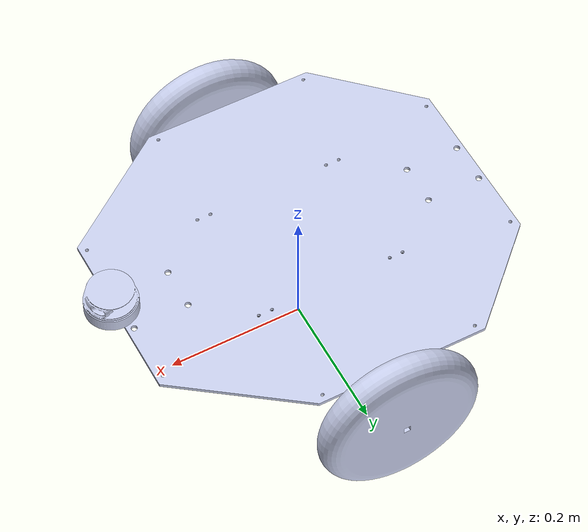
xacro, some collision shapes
<?xml version="1.0" ?>
<robot name="differential_bot" xmlns:xacro="http://ros.org/wiki/xacro">
  <xacro:include filename="$(find motion_model)/urdf/common/common_properties.xacro"/>
  <xacro:include filename="$(find motion_model)/urdf/diff/differential_bot.gazebo.xacro"/>

<!-- base -->

<link name="base_footprint"/>

 <joint name="base_joint" type="fixed">
    <parent link="base_footprint"/>
    <child link="base_link" />
    <origin xyz="0 0 0.010" rpy="0 0 ${M_PI*0.5}"/>
  </joint>

  <link name="base_link">
    <visual>
      <origin xyz="-0 0 0.2465" rpy="0 0 ${-M_PI*0.5}"/>
      <geometry>
        <mesh filename="package://motion_model/meshes/body.STL"/>
      </geometry>
      <material name="light_black"/>
    </visual>

    <collision>
      <origin xyz="0 0.064  0.048" rpy="0 0 ${M_PI*0.5}"/>
      <geometry>
        <box size="0.265 0.265 0.089"/>
      </geometry>
    </collision>
    <inertial>
      <origin xyz="0 0.064 0.048" rpy="0 0 ${M_PI*0.5}"/>
      <mass value="0.01"/>
      <inertia ixx="8.7002718e-03" ixy="-4.7576583e-05" ixz="1.1160499e-04"
               iyy="8.6195418e-03" iyz="-3.5422299e-06"
               izz="1.4612727e-02" />
    </inertial>
  </link>

<!-- body -->

 <link name="body_link">
    <visual>
      <origin xyz="-0 0 0.2465" rpy="0 0 ${-M_PI*0.5}"/>
      <geometry>
        <mesh filename="package://motion_model/meshes/base_plate.STL" />
      </geometry>
      <material
        name="">
        <color
          rgba="0.79216 0.81961 0.93333 1" />
      </material>
    </visual>

  </link>

  <joint
    name="body_joint"
    type="fixed">
    <origin
      xyz="0.0039057 0 -0.08"
      rpy="-6.913E-15 -1.1102E-16 -5.4234E-31" />
    <parent
      link="base_link" />
    <child
      link="body_link" />
    <axis
      xyz="0 0 0" />
  </joint>

<!-- wheel -->

<joint name="wheel_left_joint" type="continuous">
    <parent link="base_link"/>
    <child link="wheel_left_link"/>
    <origin xyz="0.280 0.0  0.100" rpy="${-M_PI*0.5} 0 ${-M_PI*0.5}"/>
    <axis xyz="0 0 1"/>
  </joint>

  <link name="wheel_left_link">

     <visual>
      <origin xyz="0 0 0" rpy="${-M_PI*0.5} 0 0"/>
      <geometry>
        <mesh filename="package://motion_model/meshes/left_wheel.STL"/>
      </geometry>
      <material
        name="">
        <color
          rgba="0.79216 0.81961 0.93333 1" />
      </material>
    </visual>

    <collision>
      <origin rpy="0 0 0" xyz="0 0 0"/>
      <geometry>
        <cylinder length="0.050" radius="0.100"/>
      </geometry>
    </collision>
    <inertial>
      <origin xyz="0 0 0" />
      <mass value="2.8498940e-02" />
      <inertia ixx="1.1175580e-05" ixy="-4.2369783e-11" ixz="-5.9381719e-09"
               iyy="1.1192413e-05" iyz="-1.4400107e-11"
               izz="2.0712558e-05" />
      </inertial>
  </link>

  <joint name="wheel_right_joint" type="continuous">
    <parent link="base_link"/>
    <child link="wheel_right_link"/>
    <origin xyz="-0.280 0.0  0.100" rpy="${-M_PI*0.5} 0 ${-M_PI*0.5}"/>
    <axis xyz="0 0 1"/>
  </joint>

  <link name="wheel_right_link">

    <visual>
      <origin xyz="0 0 -0.025" rpy="${-M_PI*0.5} 0 0"/>
      <geometry>
        <mesh filename="package://motion_model/meshes/right_wheel.STL"/>
      </geometry>
      <material
        name="">
        <color
          rgba="0.79216 0.81961 0.93333 1" />
      </material>
    </visual>

    <collision>
      <origin rpy="0 0 0" xyz="0 0 0"/>
      <geometry>
        <cylinder length="0.050" radius="0.100"/>
      </geometry>
    </collision>
    <inertial>
      <origin xyz="0 0 0" />
      <mass value="2.8498940e-02" />
      <inertia ixx="1.1175580e-05" ixy="-4.2369783e-11" ixz="-5.9381719e-09"
               iyy="1.1192413e-05" iyz="-1.4400107e-11"
               izz="2.0712558e-05" />
      </inertial>
  </link>

<!-- caster -->

  <joint name="caster_back_left_joint" type="fixed">
    <parent link="base_link"/>
    <child link="caster_back_left_link"/>
    <origin xyz="-0.177 0.264 0.008" rpy="${-M_PI*0.5} 0 ${-M_PI*0.5}"/>
  </joint>

  <link name="caster_back_left_link">
    <collision>
      <origin xyz="0 0.001 0" rpy="0 0 0"/>
      <geometry>
        <box size="0.030 0.009 0.020"/>
      </geometry>
    </collision>

    <inertial>
      <origin xyz="0 0 0" />
      <mass value="0.005" />
      <inertia ixx="0.001" ixy="0.0" ixz="0.0"
               iyy="0.001" iyz="0.0"
               izz="0.001" />
    </inertial>
  </link>

  <joint name="caster_back_right_joint" type="fixed">
    <parent link="base_link"/>
    <child link="caster_back_right_link"/>
    <origin xyz="0.177 0.264 0.008" rpy="${-M_PI*0.5} 0 ${-M_PI*0.5}"/>
  </joint>

  <link name="caster_back_right_link">
    <collision>
      <origin xyz="0 0.001 0" rpy="0 0 0"/>
      <geometry>
        <box size="0.030 0.009 0.020"/>
      </geometry>
    </collision>

    <inertial>
      <origin xyz="0 0 0" />
      <mass value="0.005" />
      <inertia ixx="0.001" ixy="0.0" ixz="0.0"
               iyy="0.001" iyz="0.0"
               izz="0.001" />
    </inertial>
  </link>

  <joint name="caster_front_joint" type="fixed">
    <parent link="base_link"/>
    <child link="caster_front_link"/>
    <origin xyz="0 -0.150 0.020" rpy="${-M_PI*0.5} 0 ${-M_PI*0.5}"/>
  </joint>

  <link name="caster_front_link">
    <collision>
      <origin xyz="0 0.001 0" rpy="0 0 0"/>
      <geometry>
        <box size="0.030 0.009 0.020"/>
      </geometry>
    </collision>

    <inertial>
      <origin xyz="0 0 0" />
      <mass value="0.005" />
      <inertia ixx="0.001" ixy="0.0" ixz="0.0"
               iyy="0.001" iyz="0.0"
               izz="0.001" />
    </inertial>
  </link>

<!-- imu -->

  <joint name="imu_joint" type="fixed">
    <parent link="base_link"/>
    <child link="imu_link"/>
    <origin xyz="0.0 -0.07 0.37" rpy="0 0 ${-M_PI*0.5}"/>
  </joint>

  <link name="imu_link"/>

<!-- scan -->

  <joint name="lidar_joint" type="fixed">
    <parent link="base_link"/>
    <child link="lidar_link"/>
    <origin xyz="0 -0.28 0.21" rpy="0 0 ${-M_PI*0.5}"/>
  </joint>

  <link name="lidar_link">
    <visual>
      <origin xyz="0 0 0" rpy="0 0 0"/>
      <geometry>
        <mesh filename="package://motion_model/meshes/lidar.STL" />
      </geometry>
      <material
        name="">
        <color
          rgba="0.79216 0.81961 0.93333 1" />
      </material>
    </visual>
  </link>
</robot>
